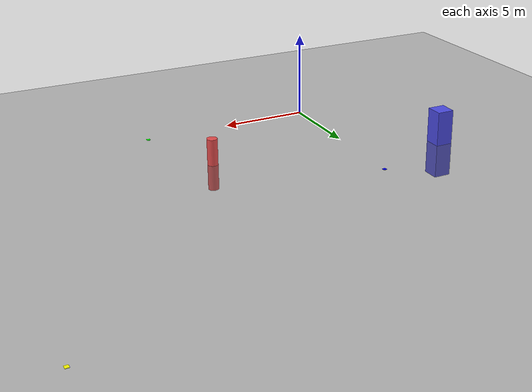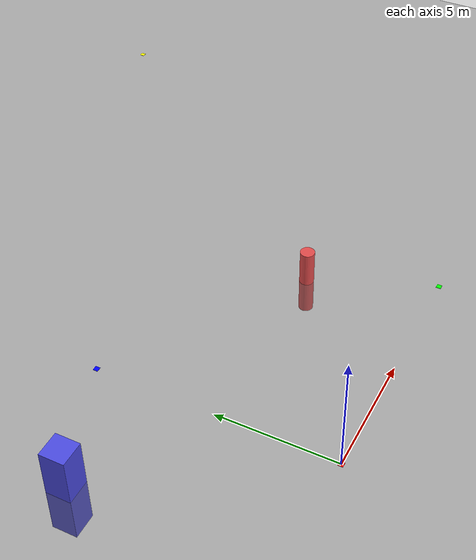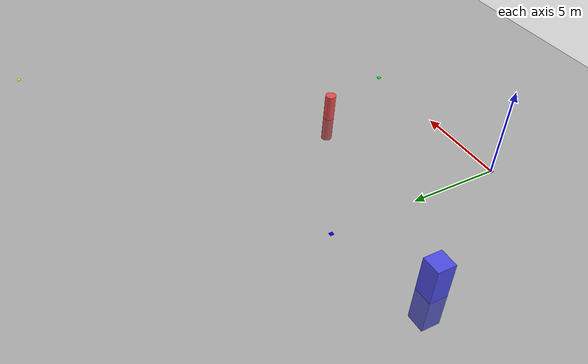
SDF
<?xml version="1.0" ?>
<sdf version="1.9">
  <!-- Multi-UAV Test World - 多无人机集群测试场景 -->
  <!-- 棉花种植无人机智巡仿真系统 -->
  <world name="multi_uav_test_world">

    <physics type="ode">
      <max_step_size>0.001</max_step_size>
      <real_time_factor>1.0</real_time_factor>
      <real_time_update_rate>1000</real_time_update_rate>
    </physics>

    <scene>
      <ambient>0.5 0.5 0.5 1</ambient>
      <background>0.8 0.9 1.0 1</background>
      <shadows>true</shadows>
      <grid>on</grid>
    </scene>

    <light type="directional" name="sun">
      <cast_shadows>true</cast_shadows>
      <pose>50 0 100 0 0 0</pose>
      <diffuse>0.8 0.8 0.7 1</diffuse>
      <specular>0.1 0.1 0.1 1</specular>
      <direction>-0.5 0.1 -0.9</direction>
    </light>

    <!-- 平坦测试场地 -->
    <model name="test_ground">
      <static>true</static>
      <link name="ground_link">
        <collision name="ground_collision">
          <geometry>
            <plane>
              <normal>0 0 1</normal>
              <size>200 200</size>
            </plane>
          </geometry>
        </collision>
        <visual name="ground_visual">
          <geometry>
            <plane>
              <normal>0 0 1</normal>
              <size>200 200</size>
            </plane>
          </geometry>
          <material>
            <ambient>0.3 0.3 0.3 1</ambient>
            <diffuse>0.35 0.35 0.35 1</diffuse>
            <specular>0.0 0.0 0.0 1</specular>
          </material>
        </visual>
      </link>
    </model>

    <!-- 网格参考标记 -->
    <model name="grid_markers">
      <static>true</static>
      <link name="link">
        <!-- 2m间隔网格标记 -->
        <visual name="marker_0_0">
          <geometry><box><size>0.2 0.2 0.02</size></box></geometry>
          <material><ambient>1 0 0 1</ambient><diffuse>1 0 0 1</diffuse></material>
          <pose>0 0 0.01 0 0 0</pose>
        </visual>
        <visual name="marker_10_0">
          <geometry><box><size>0.2 0.2 0.02</size></box></geometry>
          <material><ambient>0 1 0 1</ambient><diffuse>0 1 0 1</diffuse></material>
          <pose>10 0 0.01 0 0 0</pose>
        </visual>
        <visual name="marker_0_10">
          <geometry><box><size>0.2 0.2 0.02</size></box></geometry>
          <material><ambient>0 0 1 1</ambient><diffuse>0 0 1 1</diffuse></material>
          <pose>0 10 0.01 0 0 0</pose>
        </visual>
        <visual name="marker_20_20">
          <geometry><box><size>0.2 0.2 0.02</size></box></geometry>
          <material><ambient>1 1 0 1</ambient><diffuse>1 1 0 1</diffuse></material>
          <pose>20 20 0.01 0 0 0</pose>
        </visual>
      </link>
    </model>

    <!-- 测试障碍物 -->
    <model name="obstacle_1">
      <static>true</static>
      <pose>8 5 0 0 0 0</pose>
      <link name="link">
        <collision name="col">
          <geometry><cylinder><radius>0.3</radius><length>3</length></cylinder></geometry>
        </collision>
        <visual name="vis">
          <geometry><cylinder><radius>0.3</radius><length>3</length></cylinder></geometry>
          <material><ambient>0.8 0.2 0.2 1</ambient><diffuse>0.9 0.3 0.3 1</diffuse></material>
        </visual>
      </link>
    </model>

    <model name="obstacle_2">
      <static>true</static>
      <pose>-5 8 0 0 0 0</pose>
      <link name="link">
        <collision name="col">
          <geometry><box><size>1 1 4</size></box></geometry>
        </collision>
        <visual name="vis">
          <geometry><box><size>1 1 4</size></box></geometry>
          <material><ambient>0.2 0.2 0.8 1</ambient><diffuse>0.3 0.3 0.9 1</diffuse></material>
        </visual>
      </link>
    </model>

    <gui fullscreen='0'>
      <camera name='user_camera'>
        <pose>-30 -30 40 0 0.5 0.8</pose>
        <view_controller>orbit</view_controller>
      </camera>
    </gui>

    <plugin name="gazebo_ros_factory" filename="libgazebo_ros_factory.so"/>
    <plugin name="gazebo_ros_state" filename="libgazebo_ros_state.so"/>

  </world>
</sdf>
